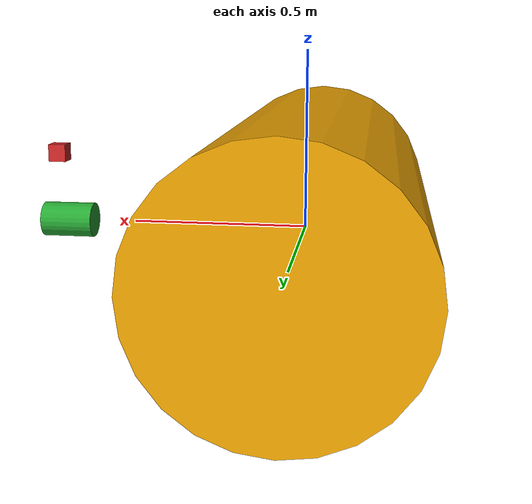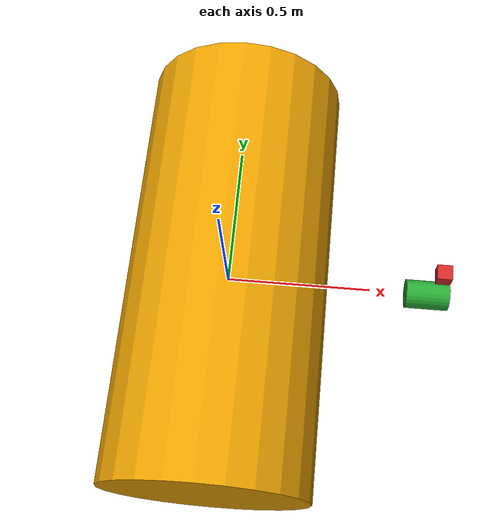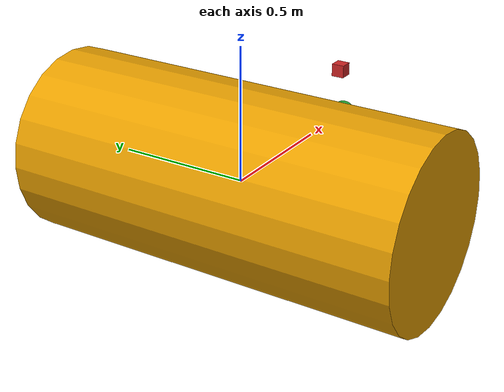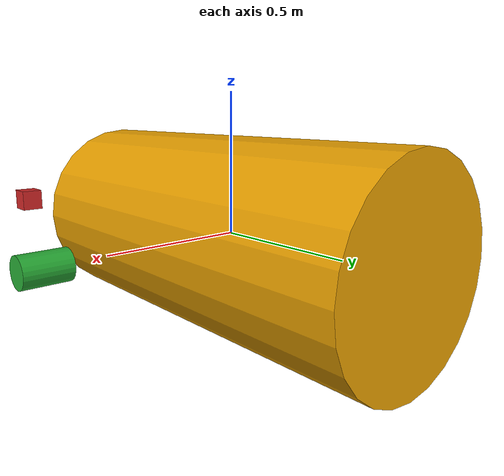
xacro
<?xml version="1.0"?>
<robot name="girona500" xmlns:xacro="http://www.ros.org/wiki/xacro">

  <!-- Import all Gazebo-customization elements, including Gazebo colors -->
  <xacro:include filename="$(find gtri_based_sonar_gazebo)/urdf/robot.xacro" />
  <!-- Import Rviz colors -->
  <xacro:include filename="$(find g500arm5_description)/urdf/materials.xacro" />

  <link name="base_link">
    <visual>
      <origin rpy="1.57079 0 3.1416" xyz="0 0 0"/>
      <geometry>
        <cylinder length="1.5" radius="0.35"/>
      </geometry>
    </visual>
    <collision>
      <geometry>
        <cylinder length="1.5" radius="0.35"/>
      </geometry>
    </collision>
    <inertial>
      <mass value="98"/>
      <inertia ixx="8.0" ixy="0.0" ixz="0.0"
                         iyy="8.0" iyz="0.0"
                                   izz="8.0"/>
    </inertial>
  </link>

  <!-- SONAR HORIZONTAL -->
  <xacro:property name="sonar_length" value="0.15" />
  <xacro:property name="sonar_radius" value="0.05" />
  <joint name="sonar_joint" type="fixed">
    <axis xyz="0 0 0" />
    <origin xyz="0.70 0 0" rpy="0 ${pi} ${pi}"/>
    <parent link="base_link"/>
    <child link="sonar_link"/>
  </joint>

  <link name="sonar_link">
    <collision>
      <origin xyz="0 0 0" rpy="0 ${pi/2} 0"/>
      <geometry>
        <cylinder length="${sonar_length}" radius="${sonar_radius}"/>
      </geometry>
    </collision>

    <visual>
      <origin xyz="0 0 0" rpy="0 ${pi/2} 0"/>
      <geometry>
        <cylinder length="${sonar_length}" radius="${sonar_radius}"/>
      </geometry>
      <material name="green"/>
    </visual>

    <inertial>
      <mass value="1e-5" />
      <origin xyz="0 0 0" rpy="0 ${pi/2} 0"/>
      <inertia ixx="1e-6" ixy="0" ixz="0" iyy="1e-6" iyz="0" izz="1e-6" />
    </inertial>
  </link>

  <!-- SONAR VERTICAL -->
  <xacro:property name="sonar_length" value="0.15" />
  <xacro:property name="sonar_radius" value="0.05" />
  <joint name="sonar_joint_vertical" type="fixed">
    <axis xyz="0 0 0" />
    <origin xyz="0.70 0 0" rpy="${-pi/2} ${pi} ${pi}"/>
    <parent link="base_link"/>
    <child link="sonar_vertical_link"/>
  </joint>

  <link name="sonar_vertical_link">
    <collision>
      <origin xyz="0 0 0" rpy="0 ${pi/2} 0"/>
      <geometry>
        <cylinder length="${sonar_length}" radius="${sonar_radius}"/>
      </geometry>
    </collision>

    <visual>
      <origin xyz="0 0 0" rpy="0 ${pi/2} 0"/>
      <geometry>
        <cylinder length="${sonar_length}" radius="${sonar_radius}"/>
      </geometry>
      <material name="green"/>
    </visual>

    <inertial>
      <mass value="1e-5" />
      <origin xyz="0 0 0" rpy="0 ${pi/2} 0"/>
      <inertia ixx="1e-6" ixy="0" ixz="0" iyy="1e-6" iyz="0" izz="1e-6" />
    </inertial>
  </link>

  <!-- Camera -->
  <xacro:property name="camera_size" value="0.05" />
  <joint name="camera_joint" type="fixed">
    <axis xyz="0 0 1.5708" />
    <origin xyz="0.725 0 0.2" rpy="0 0 0"/>
    <parent link="base_link"/>
    <child link="camera_link"/>
  </joint>

  <link name="camera_link">
    <collision>
      <origin xyz="0 0 0" rpy="0 0 0"/>
      <geometry>
    <box size="${camera_size} ${camera_size} ${camera_size}"/>
      </geometry>
    </collision>

    <visual>
      <origin xyz="0 0 0" rpy="0 0 0"/>
      <geometry>
    <box size="${camera_size} ${camera_size} ${camera_size}"/>
      </geometry>
      <material name="red"/>
    </visual>

    <inertial>
      <mass value="1e-5" />
      <origin xyz="0 0 0" rpy="0 0 0"/>
      <inertia ixx="1e-6" ixy="0" ixz="0" iyy="1e-6" iyz="0" izz="1e-6" />
    </inertial>
  </link>

</robot>
